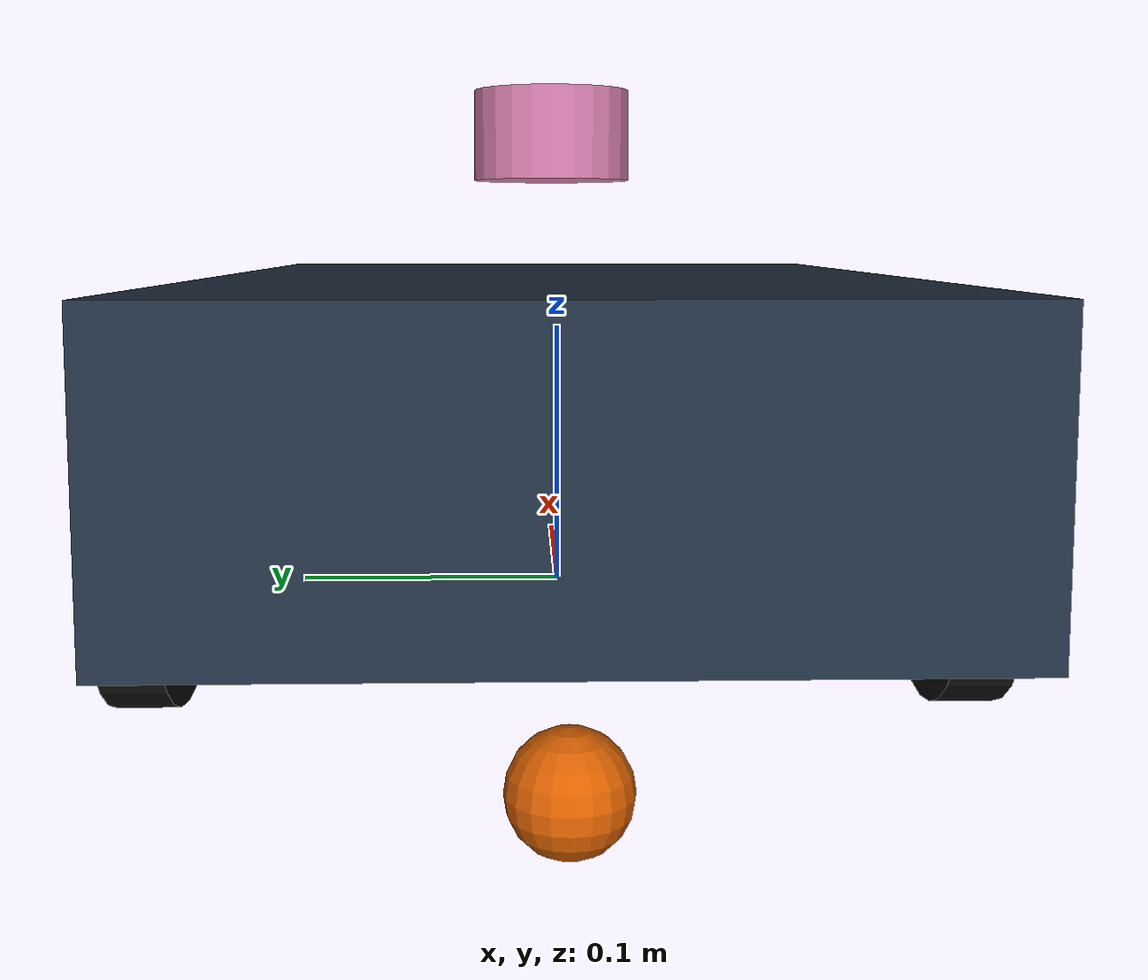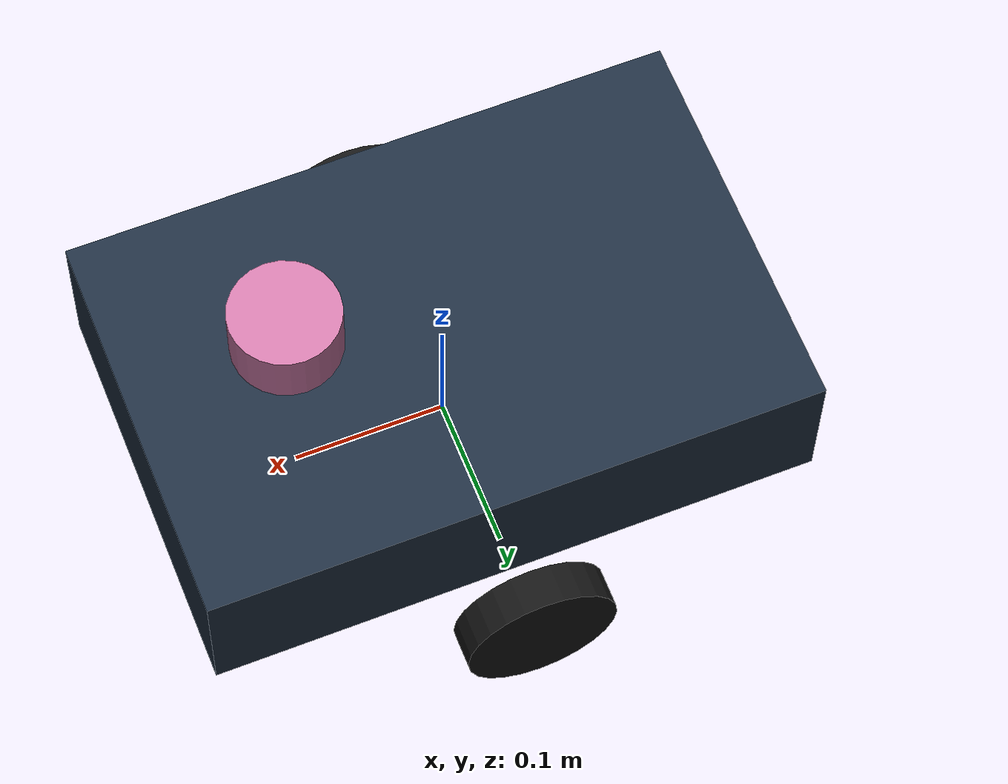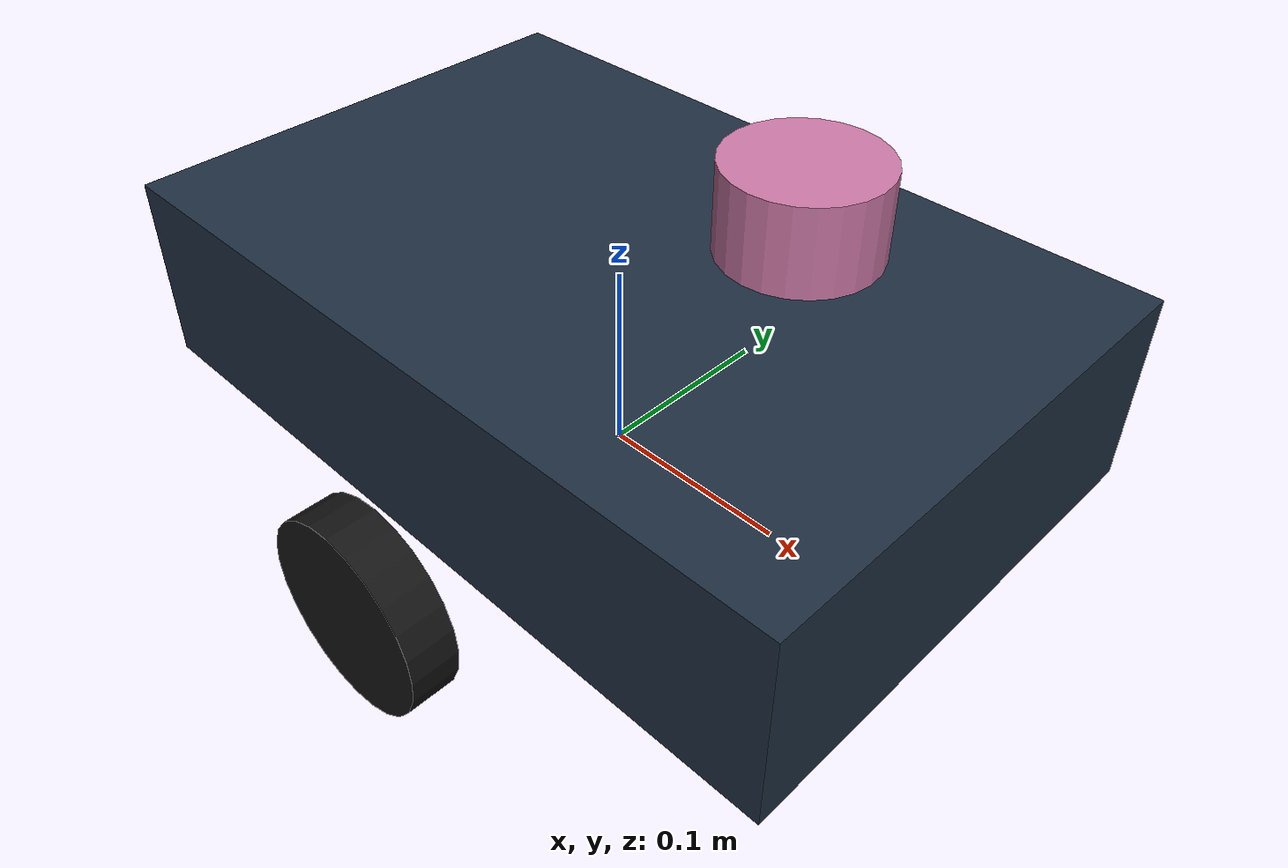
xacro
<?xml version="1.0"?>
<robot xmlns:xacro="http://www.ros.org/wiki/xacro" name="mapping_rover">
  <xacro:arg name="wheel_radius" default="0.05"/>
  <xacro:arg name="track_width" default="0.32"/>
  <xacro:property name="radius" value="$(arg wheel_radius)"/>
  <xacro:property name="track" value="$(arg track_width)"/>
  <xacro:macro name="mass" params="m ix iy iz">
    <inertial><mass value="${m}"/><inertia ixx="${ix}" ixy="0" ixz="0" iyy="${iy}" iyz="0" izz="${iz}"/></inertial>
  </xacro:macro>
  <link name="base_link">
    <xacro:mass m="8" ix="0.08" iy="0.12" iz="0.15"/>
    <visual><origin xyz="0 0 0.07"/><geometry><box size="0.40 0.26 0.10"/></geometry><material name="chassis"><color rgba="0.12 0.18 0.25 1"/></material></visual>
    <collision><origin xyz="0 0 0.07"/><geometry><box size="0.40 0.26 0.10"/></geometry></collision>
  </link>
  <link name="base_footprint"/>
  <joint name="footprint_joint" type="fixed"><parent link="base_link"/><child link="base_footprint"/><origin xyz="0 0 ${-radius}"/></joint>
  <xacro:macro name="wheel" params="side sign">
    <link name="${side}_wheel">
      <xacro:mass m="0.3" ix="0.0003" iy="0.0005" iz="0.0003"/>
      <visual><origin rpy="1.57079632679 0 0"/><geometry><cylinder radius="${radius}" length="0.025"/></geometry><material name="${side}_rubber"><color rgba="0.08 0.08 0.08 1"/></material></visual>
      <collision><origin rpy="1.57079632679 0 0"/><geometry><cylinder radius="${radius}" length="0.025"/></geometry></collision>
    </link>
    <joint name="${side}_wheel_joint" type="continuous"><parent link="base_link"/><child link="${side}_wheel"/><origin xyz="0 ${sign*track/2} 0"/><axis xyz="0 1 0"/><dynamics damping="0.01" friction="0.0"/></joint>
    <gazebo reference="${side}_wheel"><mu1>1.0</mu1><mu2>1.0</mu2></gazebo>
  </xacro:macro>
  <xacro:wheel side="left" sign="1"/><xacro:wheel side="right" sign="-1"/>
  <xacro:macro name="caster" params="name x">
    <link name="${name}"><xacro:mass m="0.05" ix="0.00002" iy="0.00002" iz="0.00002"/>
      <visual><geometry><sphere radius="0.02"/></geometry></visual><collision><geometry><sphere radius="0.02"/></geometry></collision>
    </link>
    <joint name="${name}_joint" type="fixed"><parent link="base_link"/><child link="${name}"/><origin xyz="${x} 0 ${0.02-radius}"/></joint>
    <gazebo reference="${name}_joint"><preserveFixedJoint>true</preserveFixedJoint></gazebo>
    <gazebo reference="${name}"><mu1>0.001</mu1><mu2>0.001</mu2></gazebo>
  </xacro:macro>
  <xacro:caster name="front_support" x="0.15"/><xacro:caster name="rear_support" x="-0.15"/>
  <link name="laser_link"><xacro:mass m="0.1" ix="0.0001" iy="0.0001" iz="0.0001"/><visual><geometry><cylinder radius="0.035" length="0.04"/></geometry></visual></link>
  <joint name="laser_joint" type="fixed"><parent link="base_link"/><child link="laser_link"/><origin xyz="0.10 0 0.18"/></joint>
  <gazebo reference="laser_joint"><preserveFixedJoint>true</preserveFixedJoint></gazebo>
  <link name="imu_link"/><joint name="imu_joint" type="fixed"><parent link="base_link"/><child link="imu_link"/><origin xyz="0 0 0.09"/></joint>
  <gazebo>
    <plugin filename="gz-sim-diff-drive-system" name="gz::sim::systems::DiffDrive">
      <left_joint>left_wheel_joint</left_joint><right_joint>right_wheel_joint</right_joint>
      <wheel_separation>${track}</wheel_separation><wheel_radius>${radius}</wheel_radius>
      <topic>/cmd_vel_safe</topic><odom_topic>/wheel/odom</odom_topic><tf_topic>/sim_unused_tf</tf_topic>
      <frame_id>odom</frame_id><child_frame_id>base_link</child_frame_id><odom_publish_frequency>30</odom_publish_frequency>
      <max_linear_velocity>0.18</max_linear_velocity><min_linear_velocity>-0.18</min_linear_velocity>
      <max_angular_velocity>0.6</max_angular_velocity><min_angular_velocity>-0.6</min_angular_velocity>
    </plugin>
    <plugin filename="gz-sim-joint-state-publisher-system" name="gz::sim::systems::JointStatePublisher"><topic>/joint_states</topic><joint_name>left_wheel_joint</joint_name><joint_name>right_wheel_joint</joint_name></plugin>
  </gazebo>
  <gazebo reference="laser_link"><sensor name="rover_lidar" type="gpu_lidar">
    <topic>/scan</topic><gz_frame_id>laser_link</gz_frame_id><update_rate>10</update_rate><always_on>true</always_on>
    <lidar><scan><horizontal><samples>360</samples><resolution>1</resolution><min_angle>-3.14159265359</min_angle><max_angle>3.14159265359</max_angle></horizontal></scan>
    <range><min>0.15</min><max>12.0</max><resolution>0.01</resolution></range></lidar>
  </sensor></gazebo>
</robot>
